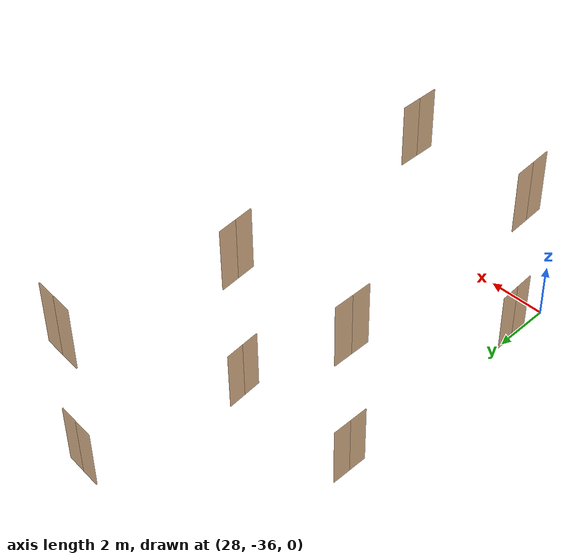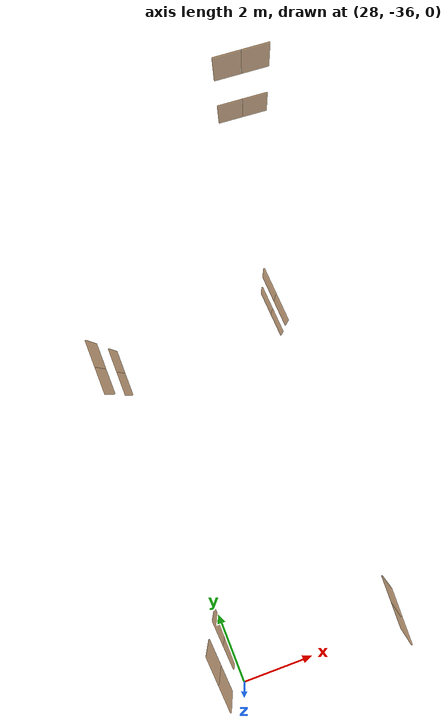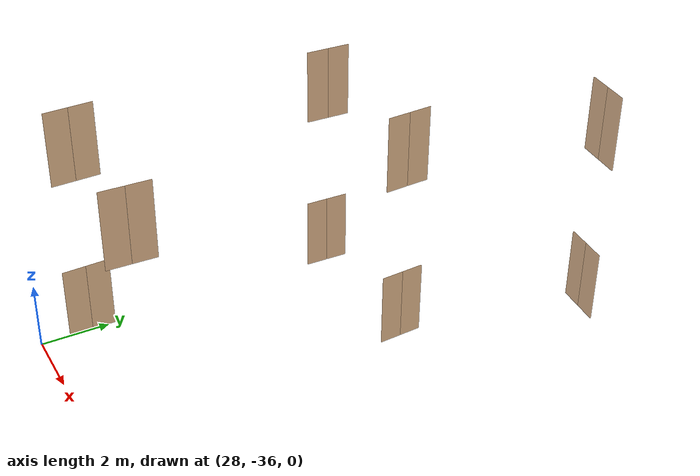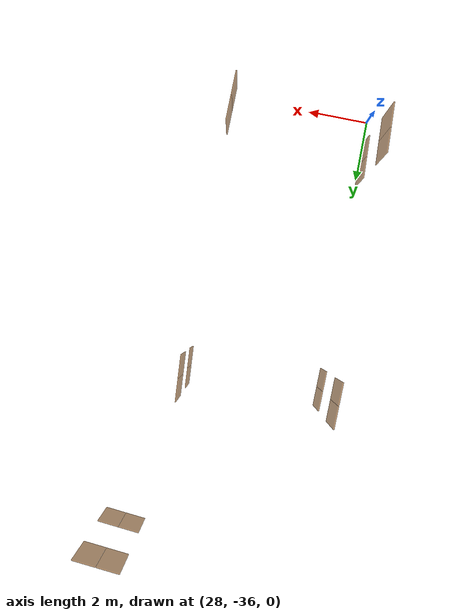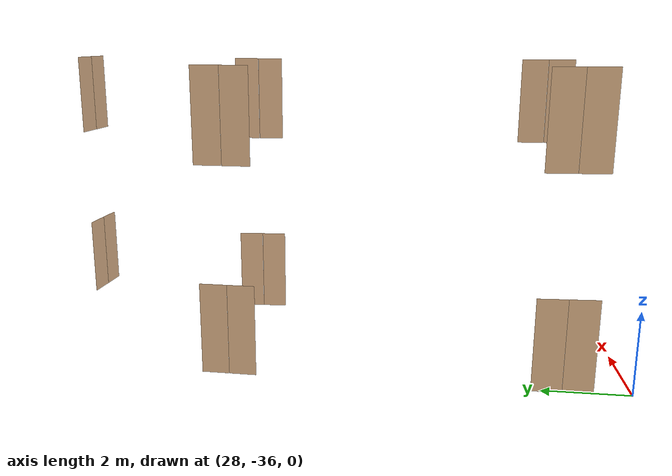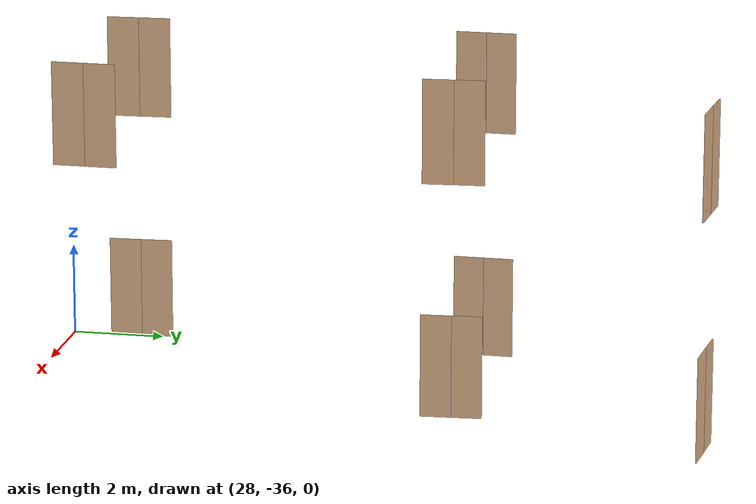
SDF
<sdf version="1.7">
 <world name="sim_world">
  <model name="null31">
   <pose>27.999438222073646 -34.47056428544896 0.0 0 0 -1.5232103534378323</pose>
   <link name="right">
    <pose>0.34861345314511705 0 1.11 0 0 0</pose>
    <visual name="right_visual">
     <geometry><box><size>0.6872269062902341 0.03 2.2</size></box></geometry>
     <material>
      <ambient>0.5 0.25 0 0.6</ambient>
      <diffuse>0.5 0.25 0 0.6</diffuse>
      <pbr><metal><metalness>0.0</metalness></metal></pbr>
     </material>
    </visual>
    <collision name="right_collision">
     <geometry><box><size>0.6872269062902341 0.03 2.2</size></box></geometry>
     <surface><contact><collide_bitmask>0x02</collide_bitmask></contact></surface>
    </collision>
    <inertial>
     <mass>50.0</mass>
     <inertia><ixx>20.17041666666667</ixx><iyy>22.134503419705197</iyy><izz>1.9715867530385258</izz></inertia>
    </inertial>
   </link>
   <joint name="right_joint" type="revolute">
    <parent>world</parent>
    <child>right</child>
    <axis><xyz>0 0 -1</xyz><limit><lower>0</lower><upper>1.57</upper></limit></axis>
    <pose>0.34861345314511705 0 0 0 0 0</pose>
   </joint>
   <link name="left">
    <pose>-0.34861345314511705 0 1.11 0 0 0</pose>
    <visual name="left_visual">
     <geometry><box><size>0.6872269062902341 0.03 2.2</size></box></geometry>
     <material>
      <ambient>0.5 0.25 0 0.6</ambient>
      <diffuse>0.5 0.25 0 0.6</diffuse>
      <pbr><metal><metalness>0.0</metalness></metal></pbr>
     </material>
    </visual>
    <collision name="left_collision">
     <geometry><box><size>0.6872269062902341 0.03 2.2</size></box></geometry>
     <surface><contact><collide_bitmask>0x02</collide_bitmask></contact></surface>
    </collision>
    <inertial>
     <mass>50.0</mass>
     <inertia><ixx>20.17041666666667</ixx><iyy>22.134503419705197</iyy><izz>1.9715867530385258</izz></inertia>
    </inertial>
   </link>
   <joint name="left_joint" type="revolute">
    <parent>world</parent>
    <child>left</child>
    <axis><xyz>0 0 -1</xyz><limit><lower>-1.57</lower><upper>0</upper></limit></axis>
    <pose>-0.34861345314511705 0 0 0 0 0</pose>
   </joint>
   <plugin name="register_component" filename="libregister_component.so">
    <component name="Door">
     <v_max_door>0.5</v_max_door>
     <a_max_door>0.3</a_max_door>
     <a_nom_door>0.15</a_nom_door>
     <dx_min_door>0.01</dx_min_door>
     <f_max_door>500.0</f_max_door>
     <ros_interface>true</ros_interface>
     <door name="null31" type="DoubleSwingDoor" left_joint_name="left_joint" right_joint_name="right_joint"/>
    </component>
   </plugin>
  </model>
  <model name="null33">
   <pose>27.976341431702537 -26.8179259073517 0.0 0 0 -1.5862183850099667</pose>
   <link name="right">
    <pose>0.3264580329378871 0 1.11 0 0 0</pose>
    <visual name="right_visual">
     <geometry><box><size>0.6429160658757742 0.03 2.2</size></box></geometry>
     <material>
      <ambient>0.5 0.25 0 0.6</ambient>
      <diffuse>0.5 0.25 0 0.6</diffuse>
      <pbr><metal><metalness>0.0</metalness></metal></pbr>
     </material>
    </visual>
    <collision name="right_collision">
     <geometry><box><size>0.6429160658757742 0.03 2.2</size></box></geometry>
     <surface><contact><collide_bitmask>0x02</collide_bitmask></contact></surface>
    </collision>
    <inertial>
     <mass>50.0</mass>
     <inertia><ixx>20.17041666666667</ixx><iyy>21.8889211156716</iyy><izz>1.7260044490049287</izz></inertia>
    </inertial>
   </link>
   <joint name="right_joint" type="revolute">
    <parent>world</parent>
    <child>right</child>
    <axis><xyz>0 0 -1</xyz><limit><lower>0</lower><upper>1.57</upper></limit></axis>
    <pose>0.3264580329378871 0 0 0 0 0</pose>
   </joint>
   <link name="left">
    <pose>-0.3264580329378871 0 1.11 0 0 0</pose>
    <visual name="left_visual">
     <geometry><box><size>0.6429160658757742 0.03 2.2</size></box></geometry>
     <material>
      <ambient>0.5 0.25 0 0.6</ambient>
      <diffuse>0.5 0.25 0 0.6</diffuse>
      <pbr><metal><metalness>0.0</metalness></metal></pbr>
     </material>
    </visual>
    <collision name="left_collision">
     <geometry><box><size>0.6429160658757742 0.03 2.2</size></box></geometry>
     <surface><contact><collide_bitmask>0x02</collide_bitmask></contact></surface>
    </collision>
    <inertial>
     <mass>50.0</mass>
     <inertia><ixx>20.17041666666667</ixx><iyy>21.8889211156716</iyy><izz>1.7260044490049287</izz></inertia>
    </inertial>
   </link>
   <joint name="left_joint" type="revolute">
    <parent>world</parent>
    <child>left</child>
    <axis><xyz>0 0 -1</xyz><limit><lower>-1.57</lower><upper>0</upper></limit></axis>
    <pose>-0.3264580329378871 0 0 0 0 0</pose>
   </joint>
   <plugin name="register_component" filename="libregister_component.so">
    <component name="Door">
     <v_max_door>0.5</v_max_door>
     <a_max_door>0.3</a_max_door>
     <a_nom_door>0.15</a_nom_door>
     <dx_min_door>0.01</dx_min_door>
     <f_max_door>500.0</f_max_door>
     <ros_interface>true</ros_interface>
     <door name="null33" type="DoubleSwingDoor" left_joint_name="left_joint" right_joint_name="right_joint"/>
    </component>
   </plugin>
  </model>
  <model name="null34">
   <pose>32.35484499795686 -26.747836193766503 0.0 0 0 1.639050485721833</pose>
   <link name="right">
    <pose>0.3247773991782727 0 1.11 0 0 0</pose>
    <visual name="right_visual">
     <geometry><box><size>0.6395547983565454 0.03 2.2</size></box></geometry>
     <material>
      <ambient>0.5 0.25 0 0.6</ambient>
      <diffuse>0.5 0.25 0 0.6</diffuse>
      <pbr><metal><metalness>0.0</metalness></metal></pbr>
     </material>
    </visual>
    <collision name="right_collision">
     <geometry><box><size>0.6395547983565454 0.03 2.2</size></box></geometry>
     <surface><contact><collide_bitmask>0x02</collide_bitmask></contact></surface>
    </collision>
    <inertial>
     <mass>50.0</mass>
     <inertia><ixx>20.17041666666667</ixx><iyy>21.870959750420344</iyy><izz>1.7080430837536726</izz></inertia>
    </inertial>
   </link>
   <joint name="right_joint" type="revolute">
    <parent>world</parent>
    <child>right</child>
    <axis><xyz>0 0 -1</xyz><limit><lower>0</lower><upper>1.57</upper></limit></axis>
    <pose>0.3247773991782727 0 0 0 0 0</pose>
   </joint>
   <link name="left">
    <pose>-0.3247773991782727 0 1.11 0 0 0</pose>
    <visual name="left_visual">
     <geometry><box><size>0.6395547983565454 0.03 2.2</size></box></geometry>
     <material>
      <ambient>0.5 0.25 0 0.6</ambient>
      <diffuse>0.5 0.25 0 0.6</diffuse>
      <pbr><metal><metalness>0.0</metalness></metal></pbr>
     </material>
    </visual>
    <collision name="left_collision">
     <geometry><box><size>0.6395547983565454 0.03 2.2</size></box></geometry>
     <surface><contact><collide_bitmask>0x02</collide_bitmask></contact></surface>
    </collision>
    <inertial>
     <mass>50.0</mass>
     <inertia><ixx>20.17041666666667</ixx><iyy>21.870959750420344</iyy><izz>1.7080430837536726</izz></inertia>
    </inertial>
   </link>
   <joint name="left_joint" type="revolute">
    <parent>world</parent>
    <child>left</child>
    <axis><xyz>0 0 -1</xyz><limit><lower>-1.57</lower><upper>0</upper></limit></axis>
    <pose>-0.3247773991782727 0 0 0 0 0</pose>
   </joint>
   <plugin name="register_component" filename="libregister_component.so">
    <component name="Door">
     <v_max_door>0.5</v_max_door>
     <a_max_door>0.3</a_max_door>
     <a_nom_door>0.15</a_nom_door>
     <dx_min_door>0.01</dx_min_door>
     <f_max_door>500.0</f_max_door>
     <ros_interface>true</ros_interface>
     <door name="null34" type="DoubleSwingDoor" left_joint_name="left_joint" right_joint_name="right_joint"/>
    </component>
   </plugin>
  </model>
  <model name="null35">
   <pose>33.58694026524019 -21.344351201753422 0.0 0 0 3.0437630402881037</pose>
   <link name="right">
    <pose>0.34372000494818006 0 1.11 0 0 0</pose>
    <visual name="right_visual">
     <geometry><box><size>0.6774400098963601 0.03 2.2</size></box></geometry>
     <material>
      <ambient>0.5 0.25 0 0.6</ambient>
      <diffuse>0.5 0.25 0 0.6</diffuse>
      <pbr><metal><metalness>0.0</metalness></metal></pbr>
     </material>
    </visual>
    <collision name="right_collision">
     <geometry><box><size>0.6774400098963601 0.03 2.2</size></box></geometry>
     <surface><contact><collide_bitmask>0x02</collide_bitmask></contact></surface>
    </collision>
    <inertial>
     <mass>50.0</mass>
     <inertia><ixx>20.17041666666667</ixx><iyy>22.07885402920159</iyy><izz>1.9159373625349188</izz></inertia>
    </inertial>
   </link>
   <joint name="right_joint" type="revolute">
    <parent>world</parent>
    <child>right</child>
    <axis><xyz>0 0 -1</xyz><limit><lower>0</lower><upper>1.57</upper></limit></axis>
    <pose>0.34372000494818006 0 0 0 0 0</pose>
   </joint>
   <link name="left">
    <pose>-0.34372000494818006 0 1.11 0 0 0</pose>
    <visual name="left_visual">
     <geometry><box><size>0.6774400098963601 0.03 2.2</size></box></geometry>
     <material>
      <ambient>0.5 0.25 0 0.6</ambient>
      <diffuse>0.5 0.25 0 0.6</diffuse>
      <pbr><metal><metalness>0.0</metalness></metal></pbr>
     </material>
    </visual>
    <collision name="left_collision">
     <geometry><box><size>0.6774400098963601 0.03 2.2</size></box></geometry>
     <surface><contact><collide_bitmask>0x02</collide_bitmask></contact></surface>
    </collision>
    <inertial>
     <mass>50.0</mass>
     <inertia><ixx>20.17041666666667</ixx><iyy>22.07885402920159</iyy><izz>1.9159373625349188</izz></inertia>
    </inertial>
   </link>
   <joint name="left_joint" type="revolute">
    <parent>world</parent>
    <child>left</child>
    <axis><xyz>0 0 -1</xyz><limit><lower>-1.57</lower><upper>0</upper></limit></axis>
    <pose>-0.34372000494818006 0 0 0 0 0</pose>
   </joint>
   <plugin name="register_component" filename="libregister_component.so">
    <component name="Door">
     <v_max_door>0.5</v_max_door>
     <a_max_door>0.3</a_max_door>
     <a_nom_door>0.15</a_nom_door>
     <dx_min_door>0.01</dx_min_door>
     <f_max_door>500.0</f_max_door>
     <ros_interface>true</ros_interface>
     <door name="null35" type="DoubleSwingDoor" left_joint_name="left_joint" right_joint_name="right_joint"/>
    </component>
   </plugin>
  </model>
  <model name="anull31">
   <pose>28.00146181901739 -34.44349850020496 5.0 0 0 -1.5232094916189902</pose>
   <link name="right">
    <pose>0.3486149553554434 0 1.11 0 0 0</pose>
    <visual name="right_visual">
     <geometry><box><size>0.6872299107108868 0.03 2.2</size></box></geometry>
     <material>
      <ambient>0.5 0.25 0 0.6</ambient>
      <diffuse>0.5 0.25 0 0.6</diffuse>
      <pbr><metal><metalness>0.0</metalness></metal></pbr>
     </material>
    </visual>
    <collision name="right_collision">
     <geometry><box><size>0.6872299107108868 0.03 2.2</size></box></geometry>
     <surface><contact><collide_bitmask>0x02</collide_bitmask></contact></surface>
    </collision>
    <inertial>
     <mass>50.0</mass>
     <inertia><ixx>20.17041666666667</ixx><iyy>22.134520625732062</iyy><izz>1.9716039590653895</izz></inertia>
    </inertial>
   </link>
   <joint name="right_joint" type="revolute">
    <parent>world</parent>
    <child>right</child>
    <axis><xyz>0 0 -1</xyz><limit><lower>0</lower><upper>1.57</upper></limit></axis>
    <pose>0.3486149553554434 0 0 0 0 0</pose>
   </joint>
   <link name="left">
    <pose>-0.3486149553554434 0 1.11 0 0 0</pose>
    <visual name="left_visual">
     <geometry><box><size>0.6872299107108868 0.03 2.2</size></box></geometry>
     <material>
      <ambient>0.5 0.25 0 0.6</ambient>
      <diffuse>0.5 0.25 0 0.6</diffuse>
      <pbr><metal><metalness>0.0</metalness></metal></pbr>
     </material>
    </visual>
    <collision name="left_collision">
     <geometry><box><size>0.6872299107108868 0.03 2.2</size></box></geometry>
     <surface><contact><collide_bitmask>0x02</collide_bitmask></contact></surface>
    </collision>
    <inertial>
     <mass>50.0</mass>
     <inertia><ixx>20.17041666666667</ixx><iyy>22.134520625732062</iyy><izz>1.9716039590653895</izz></inertia>
    </inertial>
   </link>
   <joint name="left_joint" type="revolute">
    <parent>world</parent>
    <child>left</child>
    <axis><xyz>0 0 -1</xyz><limit><lower>-1.57</lower><upper>0</upper></limit></axis>
    <pose>-0.3486149553554434 0 0 0 0 0</pose>
   </joint>
   <plugin name="register_component" filename="libregister_component.so">
    <component name="Door">
     <v_max_door>0.5</v_max_door>
     <a_max_door>0.3</a_max_door>
     <a_nom_door>0.15</a_nom_door>
     <dx_min_door>0.01</dx_min_door>
     <f_max_door>500.0</f_max_door>
     <ros_interface>true</ros_interface>
     <door name="anull31" type="DoubleSwingDoor" left_joint_name="left_joint" right_joint_name="right_joint"/>
    </component>
   </plugin>
  </model>
  <model name="anull32">
   <pose>32.38929597355645 -34.492381032094656 5.0 0 0 1.5533468094862284</pose>
   <link name="right">
    <pose>0.340755548706143 0 1.11 0 0 0</pose>
    <visual name="right_visual">
     <geometry><box><size>0.671511097412286 0.03 2.2</size></box></geometry>
     <material>
      <ambient>0.5 0.25 0 0.6</ambient>
      <diffuse>0.5 0.25 0 0.6</diffuse>
      <pbr><metal><metalness>0.0</metalness></metal></pbr>
     </material>
    </visual>
    <collision name="right_collision">
     <geometry><box><size>0.671511097412286 0.03 2.2</size></box></geometry>
     <surface><contact><collide_bitmask>0x02</collide_bitmask></contact></surface>
    </collision>
    <inertial>
     <mass>50.0</mass>
     <inertia><ixx>20.17041666666667</ixx><iyy>22.045529808116058</iyy><izz>1.8826131414493863</izz></inertia>
    </inertial>
   </link>
   <joint name="right_joint" type="revolute">
    <parent>world</parent>
    <child>right</child>
    <axis><xyz>0 0 -1</xyz><limit><lower>0</lower><upper>1.57</upper></limit></axis>
    <pose>0.340755548706143 0 0 0 0 0</pose>
   </joint>
   <link name="left">
    <pose>-0.340755548706143 0 1.11 0 0 0</pose>
    <visual name="left_visual">
     <geometry><box><size>0.671511097412286 0.03 2.2</size></box></geometry>
     <material>
      <ambient>0.5 0.25 0 0.6</ambient>
      <diffuse>0.5 0.25 0 0.6</diffuse>
      <pbr><metal><metalness>0.0</metalness></metal></pbr>
     </material>
    </visual>
    <collision name="left_collision">
     <geometry><box><size>0.671511097412286 0.03 2.2</size></box></geometry>
     <surface><contact><collide_bitmask>0x02</collide_bitmask></contact></surface>
    </collision>
    <inertial>
     <mass>50.0</mass>
     <inertia><ixx>20.17041666666667</ixx><iyy>22.045529808116058</iyy><izz>1.8826131414493863</izz></inertia>
    </inertial>
   </link>
   <joint name="left_joint" type="revolute">
    <parent>world</parent>
    <child>left</child>
    <axis><xyz>0 0 -1</xyz><limit><lower>-1.57</lower><upper>0</upper></limit></axis>
    <pose>-0.340755548706143 0 0 0 0 0</pose>
   </joint>
   <plugin name="register_component" filename="libregister_component.so">
    <component name="Door">
     <v_max_door>0.5</v_max_door>
     <a_max_door>0.3</a_max_door>
     <a_nom_door>0.15</a_nom_door>
     <dx_min_door>0.01</dx_min_door>
     <f_max_door>500.0</f_max_door>
     <ros_interface>true</ros_interface>
     <door name="anull32" type="DoubleSwingDoor" left_joint_name="left_joint" right_joint_name="right_joint"/>
    </component>
   </plugin>
  </model>
  <model name="anull33">
   <pose>27.978358333903554 -26.790827166029807 5.0 0 0 -1.5862175231911306</pose>
   <link name="right">
    <pose>0.3264594396782837 0 1.11 0 0 0</pose>
    <visual name="right_visual">
     <geometry><box><size>0.6429188793565674 0.03 2.2</size></box></geometry>
     <material>
      <ambient>0.5 0.25 0 0.6</ambient>
      <diffuse>0.5 0.25 0 0.6</diffuse>
      <pbr><metal><metalness>0.0</metalness></metal></pbr>
     </material>
    </visual>
    <collision name="right_collision">
     <geometry><box><size>0.6429188793565674 0.03 2.2</size></box></geometry>
     <surface><contact><collide_bitmask>0x02</collide_bitmask></contact></surface>
    </collision>
    <inertial>
     <mass>50.0</mass>
     <inertia><ixx>20.17041666666667</ixx><iyy>21.888936189304605</iyy><izz>1.7260195226379358</izz></inertia>
    </inertial>
   </link>
   <joint name="right_joint" type="revolute">
    <parent>world</parent>
    <child>right</child>
    <axis><xyz>0 0 -1</xyz><limit><lower>0</lower><upper>1.57</upper></limit></axis>
    <pose>0.3264594396782837 0 0 0 0 0</pose>
   </joint>
   <link name="left">
    <pose>-0.3264594396782837 0 1.11 0 0 0</pose>
    <visual name="left_visual">
     <geometry><box><size>0.6429188793565674 0.03 2.2</size></box></geometry>
     <material>
      <ambient>0.5 0.25 0 0.6</ambient>
      <diffuse>0.5 0.25 0 0.6</diffuse>
      <pbr><metal><metalness>0.0</metalness></metal></pbr>
     </material>
    </visual>
    <collision name="left_collision">
     <geometry><box><size>0.6429188793565674 0.03 2.2</size></box></geometry>
     <surface><contact><collide_bitmask>0x02</collide_bitmask></contact></surface>
    </collision>
    <inertial>
     <mass>50.0</mass>
     <inertia><ixx>20.17041666666667</ixx><iyy>21.888936189304605</iyy><izz>1.7260195226379358</izz></inertia>
    </inertial>
   </link>
   <joint name="left_joint" type="revolute">
    <parent>world</parent>
    <child>left</child>
    <axis><xyz>0 0 -1</xyz><limit><lower>-1.57</lower><upper>0</upper></limit></axis>
    <pose>-0.3264594396782837 0 0 0 0 0</pose>
   </joint>
   <plugin name="register_component" filename="libregister_component.so">
    <component name="Door">
     <v_max_door>0.5</v_max_door>
     <a_max_door>0.3</a_max_door>
     <a_nom_door>0.15</a_nom_door>
     <dx_min_door>0.01</dx_min_door>
     <f_max_door>500.0</f_max_door>
     <ros_interface>true</ros_interface>
     <door name="anull33" type="DoubleSwingDoor" left_joint_name="left_joint" right_joint_name="right_joint"/>
    </component>
   </plugin>
  </model>
  <model name="anull34">
   <pose>32.356880707162226 -26.72073337692791 5.0 0 0 1.639051347540671</pose>
   <link name="right">
    <pose>0.32477879867664966 0 1.11 0 0 0</pose>
    <visual name="right_visual">
     <geometry><box><size>0.6395575973532993 0.03 2.2</size></box></geometry>
     <material>
      <ambient>0.5 0.25 0 0.6</ambient>
      <diffuse>0.5 0.25 0 0.6</diffuse>
      <pbr><metal><metalness>0.0</metalness></metal></pbr>
     </material>
    </visual>
    <collision name="right_collision">
     <geometry><box><size>0.6395575973532993 0.03 2.2</size></box></geometry>
     <surface><contact><collide_bitmask>0x02</collide_bitmask></contact></surface>
    </collision>
    <inertial>
     <mass>50.0</mass>
     <inertia><ixx>20.17041666666667</ixx><iyy>21.87097466805136</iyy><izz>1.7080580013846873</izz></inertia>
    </inertial>
   </link>
   <joint name="right_joint" type="revolute">
    <parent>world</parent>
    <child>right</child>
    <axis><xyz>0 0 -1</xyz><limit><lower>0</lower><upper>1.57</upper></limit></axis>
    <pose>0.32477879867664966 0 0 0 0 0</pose>
   </joint>
   <link name="left">
    <pose>-0.32477879867664966 0 1.11 0 0 0</pose>
    <visual name="left_visual">
     <geometry><box><size>0.6395575973532993 0.03 2.2</size></box></geometry>
     <material>
      <ambient>0.5 0.25 0 0.6</ambient>
      <diffuse>0.5 0.25 0 0.6</diffuse>
      <pbr><metal><metalness>0.0</metalness></metal></pbr>
     </material>
    </visual>
    <collision name="left_collision">
     <geometry><box><size>0.6395575973532993 0.03 2.2</size></box></geometry>
     <surface><contact><collide_bitmask>0x02</collide_bitmask></contact></surface>
    </collision>
    <inertial>
     <mass>50.0</mass>
     <inertia><ixx>20.17041666666667</ixx><iyy>21.87097466805136</iyy><izz>1.7080580013846873</izz></inertia>
    </inertial>
   </link>
   <joint name="left_joint" type="revolute">
    <parent>world</parent>
    <child>left</child>
    <axis><xyz>0 0 -1</xyz><limit><lower>-1.57</lower><upper>0</upper></limit></axis>
    <pose>-0.32477879867664966 0 0 0 0 0</pose>
   </joint>
   <plugin name="register_component" filename="libregister_component.so">
    <component name="Door">
     <v_max_door>0.5</v_max_door>
     <a_max_door>0.3</a_max_door>
     <a_nom_door>0.15</a_nom_door>
     <dx_min_door>0.01</dx_min_door>
     <f_max_door>500.0</f_max_door>
     <ros_interface>true</ros_interface>
     <door name="anull34" type="DoubleSwingDoor" left_joint_name="left_joint" right_joint_name="right_joint"/>
    </component>
   </plugin>
  </model>
  <model name="anull35">
   <pose>33.58897662682192 -21.31722403891073 5.0 0 0 3.043763902106947</pose>
   <link name="right">
    <pose>0.34372148607214403 0 1.11 0 0 0</pose>
    <visual name="right_visual">
     <geometry><box><size>0.6774429721442881 0.03 2.2</size></box></geometry>
     <material>
      <ambient>0.5 0.25 0 0.6</ambient>
      <diffuse>0.5 0.25 0 0.6</diffuse>
      <pbr><metal><metalness>0.0</metalness></metal></pbr>
     </material>
    </visual>
    <collision name="right_collision">
     <geometry><box><size>0.6774429721442881 0.03 2.2</size></box></geometry>
     <surface><contact><collide_bitmask>0x02</collide_bitmask></contact></surface>
    </collision>
    <inertial>
     <mass>50.0</mass>
     <inertia><ixx>20.17041666666667</ixx><iyy>22.078870752115368</iyy><izz>1.9159540854486945</izz></inertia>
    </inertial>
   </link>
   <joint name="right_joint" type="revolute">
    <parent>world</parent>
    <child>right</child>
    <axis><xyz>0 0 -1</xyz><limit><lower>0</lower><upper>1.57</upper></limit></axis>
    <pose>0.34372148607214403 0 0 0 0 0</pose>
   </joint>
   <link name="left">
    <pose>-0.34372148607214403 0 1.11 0 0 0</pose>
    <visual name="left_visual">
     <geometry><box><size>0.6774429721442881 0.03 2.2</size></box></geometry>
     <material>
      <ambient>0.5 0.25 0 0.6</ambient>
      <diffuse>0.5 0.25 0 0.6</diffuse>
      <pbr><metal><metalness>0.0</metalness></metal></pbr>
     </material>
    </visual>
    <collision name="left_collision">
     <geometry><box><size>0.6774429721442881 0.03 2.2</size></box></geometry>
     <surface><contact><collide_bitmask>0x02</collide_bitmask></contact></surface>
    </collision>
    <inertial>
     <mass>50.0</mass>
     <inertia><ixx>20.17041666666667</ixx><iyy>22.078870752115368</iyy><izz>1.9159540854486945</izz></inertia>
    </inertial>
   </link>
   <joint name="left_joint" type="revolute">
    <parent>world</parent>
    <child>left</child>
    <axis><xyz>0 0 -1</xyz><limit><lower>-1.57</lower><upper>0</upper></limit></axis>
    <pose>-0.34372148607214403 0 0 0 0 0</pose>
   </joint>
   <plugin name="register_component" filename="libregister_component.so">
    <component name="Door">
     <v_max_door>0.5</v_max_door>
     <a_max_door>0.3</a_max_door>
     <a_nom_door>0.15</a_nom_door>
     <dx_min_door>0.01</dx_min_door>
     <f_max_door>500.0</f_max_door>
     <ros_interface>true</ros_interface>
     <door name="anull35" type="DoubleSwingDoor" left_joint_name="left_joint" right_joint_name="right_joint"/>
    </component>
   </plugin>
  </model>
 </world>
</sdf>
